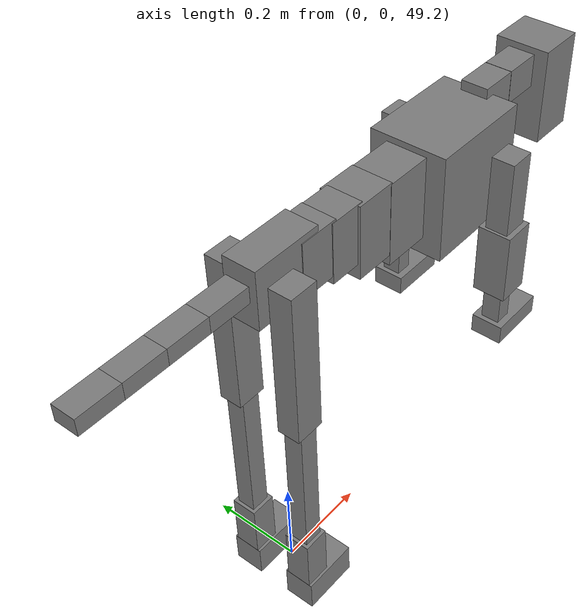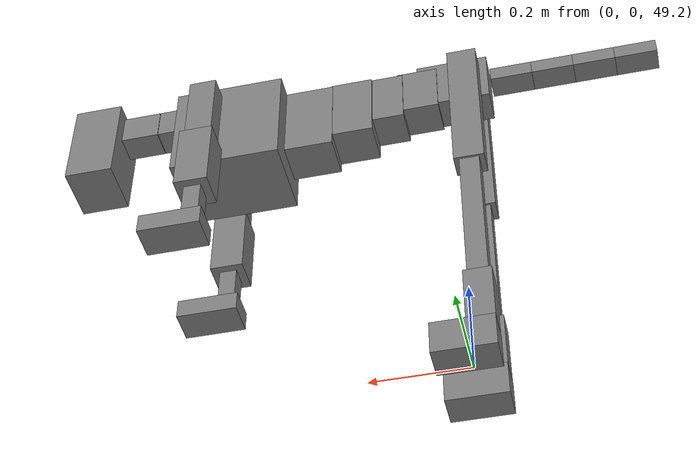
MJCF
<mujoco model="dog">

    <default>
        <joint armature="0.02" stiffness="1" damping="0.2" limited="true"/>
        <geom condim="3" friction="1 0.05 0.05" margin="0.01"/>
        <motor ctrllimited="true" ctrlrange="-1.0 1.0" forcelimited="true" gear="50"/>
    </default>

    <compiler inertiafromgeom="true" angle="radian"/>

    <option timestep="0.016" iterations="50" tolerance="1e-10" solver="Newton" jacobian="dense" cone="pyramidal"/>

    <size nconmax="20000" njmax="60000" nstack="5000000"/>
    <visual>
        <map force="0.1" zfar="30"/>
        <rgba haze="0.15 0.25 0.35 1"/>
        <quality shadowsize="2048"/>
        <global offwidth="800" offheight="800"/>
    </visual>

    <asset>
        <texture type="skybox" builtin="gradient" rgb1="0.3 0.5 0.7" rgb2="0 0 0" width="512" height="512"/>
        <texture name="texplane" type="2d" builtin="checker" rgb1=".2 .3 .4" rgb2=".1 0.15 0.2" width="512" height="512"
                 mark="cross" markrgb=".8 .8 .8"/>
        <texture name="texgeom" type="cube" builtin="flat" mark="cross" width="127" height="1278" rgb1="0.8 0.6 0.4"
                 rgb2="0.8 0.6 0.4" markrgb="1 1 1" random="0.01"/>

        <material name="matplane" reflectance="0.3" texture="texplane" texrepeat="1 1" texuniform="true"/>
        <material name="matgeom" texture="texgeom" texuniform="true" rgba="0.8 0.6 .4 1"/>
    </asset>

    <worldbody>
        <geom name="floor" pos="0 0 0" size="0 0 .25" type="plane" material="matplane" condim="3"/>

        <light directional="false" diffuse=".2 .2 .2" specular="0 0 0" pos="0 0 5" dir="0 0 -1" castshadow="false"/>
        <light mode="targetbodycom" target="torso" directional="false" diffuse=".8 .8 .8" specular="0.3 0.3 0.3"
               pos="0 0 4.0" dir="0 0 -1"/>

        <body name="root" pos="0 0 50">
            <freejoint name="root_1"/>
            <geom type="box" pos="0 0 -0.02" size="0.0774  0.0358  0.063" density="2030"/>

            <body name="spine1" pos="0.054 0 0">
                <joint name="spine1_y" axis="0 1 0" range="0 0.7" limited="true"/>
                <geom type="box" pos="0.02375 0 -0.03" size="0.04375  0.0375  0.05985" density="2030"/>

                <body name="spine2" pos="0.0612 0 0">
                    <joint name="spine2_y" axis="0 1 0" range="-0.15 0.15" limited="true"/>
                    <geom type="box" pos="0.03555  0  -0.04" size="0.04055  0.039  0.06615" density="2030"/>

                    <body name="spine3" pos="0.0730 0 0">
                        <joint name="spine3_y" axis="0 1 0" range="-0.15 0.15" limited="true"/>
                        <geom type="box" pos="0.03555  0  -0.057" size="0.04555  0.0445  0.081" density="2030"/>

                        <body name="spine4" pos="0.0780 0 0">
                            <joint name="spine4_y" axis="0 1 0" range="-0.15 0.15" limited="true"/>
                            <geom type="box" pos="0.05265  0  -0.07" size="0.05265  0.045  0.09135" density="2030"/>

                            <body name="torso" pos="0.1082 0 0">
                                <joint name="torso_y" axis="0 1 0" range="-0.15 0.15" limited="true"/>
                                <geom type="box" pos="0.11925  0  -0.085" size="0.11925  0.085  0.11745"
                                      density="2030"/>

                                <body name="neck1" pos="0.2160  0   0.0180">
                                    <joint name="neck1_y" axis="0 1 0" range="-1.2  -1" limited="true"/>
                                    <geom type="box" pos="0.0423  0  0" size="0.0423  0.03  0.036" density="2325"/>

                                    <body name="neck2" pos="0.0853  0  0">
                                        <joint name="neck2_y" axis="0 1 0" range="0.1  0" limited="true"/>
                                        <geom type="box" pos="0.0423  0  0" size="0.0423  0.03  0.036" density="2325"/>

                                        <body name="head" pos="0.0853  0  0">
                                            <joint name="head_y" axis="0 1 0" range="-0.3  -0.2" limited="true"/>
                                            <geom type="box" pos="0.0531  0  -0.055" size="0.0531  0.06  0.1044"
                                                  density="4030"/>

                                        </body>
                                    </body>
                                </body>

                                <body name="front_shoulder" pos="0.156  0   -0.0480">
                                    <joint name="front_shoulder_y" axis="0 1 0" range="-1 1.5" limited="true"/>
                                    <geom type="box" pos="0 0.13 -0.0691" size="0.0291  0.0249  0.0958" density="1158"/>
                                    <geom type="box" pos="0 -0.13 -0.0691" size="0.0291  0.0249  0.0958"
                                          density="1158"/>

                                    <body name="front_elbow" pos="0  0  -0.1382">
                                        <joint name="front_elbow_y" axis="0 1 0" range="-2 0" limited="true"/>
                                        <geom type="box" pos="0 0.13 -0.0789" size="0.0356  0.0364  0.0789"
                                              density="1081"/>
                                        <geom type="box" pos="0 -0.13 -0.0789" size="0.0356  0.0364  0.0789"
                                              density="1081"/>

                                        <body name="front_wrist" pos="0  0  -0.1578">
                                            <joint name="front_wrist_y" axis="0 1 0" range="-0.2 0" limited="true"/>
                                            <geom type="box" pos="0 0.13 -0.0477" size="0.0183  0.0203  0.0608"
                                                  density="1664"/>
                                            <geom type="box" pos="0 -0.13 -0.0477" size="0.0183  0.0203  0.0608"
                                                  density="1664"/>

                                            <body name="front_finger_end" pos="0  0  -0.0954">
                                                <joint name="front_finger_y" axis="0 1 0" range="-0.4 1"
                                                       limited="true"/>
                                                <geom type="box" pos="0.0354  0.13  -0.0065"
                                                      size="0.0650  0.0354  0.0215" density="1515"/>
                                                <geom type="box" pos="0.0354  -0.13  -0.0065"
                                                      size="0.0650  0.0354  0.0215" density="1515"/>

                                            </body>

                                        </body>
                                    </body>
                                </body>

                            </body>
                        </body>
                    </body>
                </body>
            </body>

            <body name="back_hip" pos="-0.03 0 -0.018">
                <joint name="back_hip_y" axis="0 1 0" range="-1.5 0.3" limited="true"/>
                <geom type="box" pos="0 0.07 -0.1458" size="0.0313  0.0246  0.1686" density="1154"/>
                <geom type="box" pos="0 -0.07 -0.1458" size="0.0313  0.0246  0.1686" density="1154"/>

                <body name="back_knee" pos="0  0  -0.2917">
                    <joint name="back_knee_y" axis="0 1 0" range="0 2.8" limited="true"/>
                    <geom type="box" pos="0 0.07 -0.1731" size="0.0205  0.0202  0.1887" density="1227"/>
                    <geom type="box" pos="0 -0.07 -0.1731" size="0.0205  0.0202  0.1887" density="1227"/>

                    <body name="back_ankle" pos="0  0  -0.3463">
                        <joint name="back_ankle_y" axis="0 1 0" range="-2.2 0" limited="true"/>
                        <geom type="box" pos="0 0.07 -0.0629" size="0.0278  0.0278  0.0742" density="1284"/>
                        <geom type="box" pos="0 -0.07 -0.0629" size="0.0278  0.0278  0.0742" density="1284"/>

                        <body name="back_toe_end" pos="0  0  -0.1258">
                            <joint name="back_toe_y" axis="0 1 0" range="-0.4 1" limited="true"/>
                            <geom type="box" pos="0.0334  0.07  -0.0199" size="0.0613  0.0334  0.0349" density="1515"/>
                            <geom type="box" pos="0.0334  -0.07  -0.0199" size="0.0613  0.0334  0.0349" density="1515"/>

                        </body>
                    </body>
                </body>
            </body>

            <body name="tail1" pos="-0.074 0 -0.006">
                <joint name="tail1_y" axis="0 1 0" range="-0.2 0.2" limited="true"/>
                <geom type="box" pos="-0.0536  0  0" size="0.045  0.025  0.0175" density="1587"/>

                <body name="tail2" pos="-0.09 0 0">
                    <joint name="tail2_y" axis="0 1 0" range="-0.2 0.2" limited="true"/>
                    <geom type="box" pos="-0.0536  0  0" size="0.045  0.025  0.0175" density="1587"/>

                    <body name="tail3" pos="-0.09 0 0">
                        <joint name="tail3_y" axis="0 1 0" range="-0.2 0.2" limited="true"/>
                        <geom type="box" pos="-0.0536  0  0" size="0.045  0.025  0.0175" density="1587"/>

                        <body name="tail4" pos="-0.09 0 0">
                            <joint name="tail4_y" axis="0 1 0" range="-0.2 0.2" limited="true"/>
                            <geom type="box" pos="-0.0536  0  0" size="0.045  0.025  0.0175" density="1587"/>

                        </body>
                    </body>
                </body>
            </body>
        </body>
    </worldbody>

    <actuator>
        <motor joint="spine1_y" forcerange="-150 150     "/>
        <motor joint="spine2_y" forcerange="-150 150     "/>
        <motor joint="spine3_y" forcerange="-150 150     "/>
        <motor joint="spine4_y" forcerange="-150 150     "/>
        <motor joint="torso_y" forcerange="-150 150     "/>
        <motor joint="neck1_y" forcerange="-100 100       "/>
        <motor joint="neck2_y" forcerange="-100 100       "/>
        <motor joint="head_y" forcerange="-150 150       "/>
        <motor joint="front_shoulder_y" forcerange="-137.63 128.23"/>
        <motor joint="front_elbow_y" forcerange="-192.21 172.20"/>
        <motor joint="front_wrist_y" forcerange="-91.31 71.20"/>
        <motor joint="front_finger_y" forcerange="-78.12 70.86"/>
        <motor joint="back_hip_y" forcerange="-316.87 210.60"/>
        <motor joint="back_knee_y" forcerange="-235.73 258.79"/>
        <motor joint="back_angle_y" forcerange="-225.63 118.73"/>
        <motor joint="back_toe_y" forcerange="-55.31 132.26"/>
        <motor joint="tail1_y" forcerange="-50 50     "/>
        <motor joint="tail2_y" forcerange="-50 50     "/>
        <motor joint="tail3_y" forcerange="-50 50     "/>
        <motor joint="tail4_y" forcerange="-50 50     "/>
    </actuator>
</mujoco>
